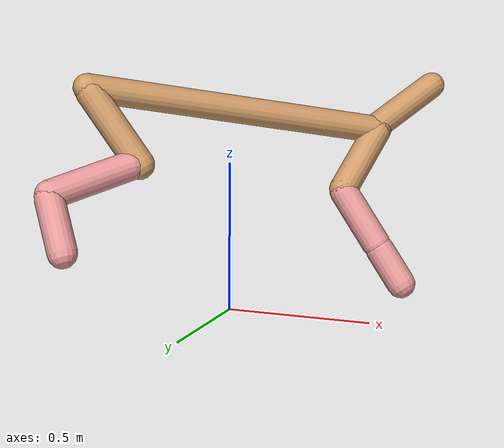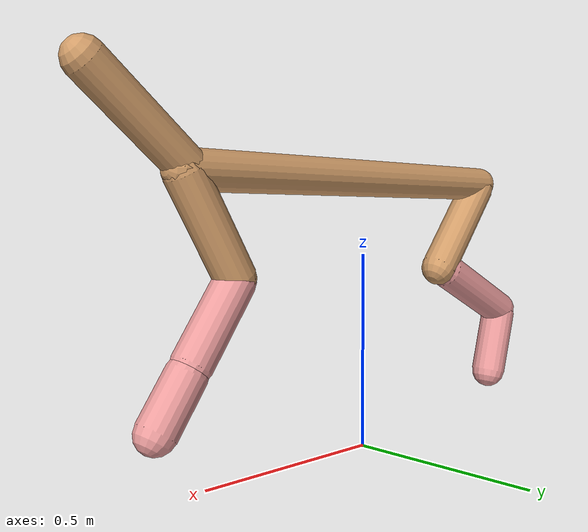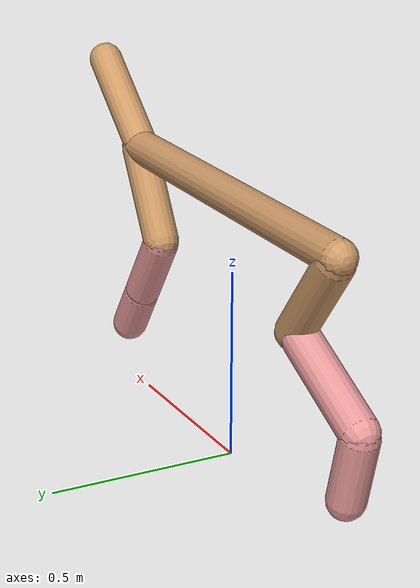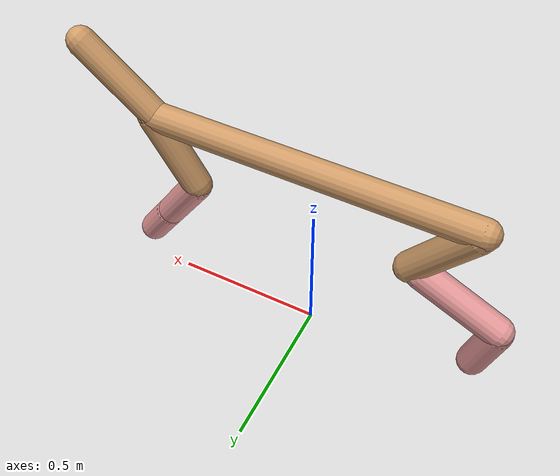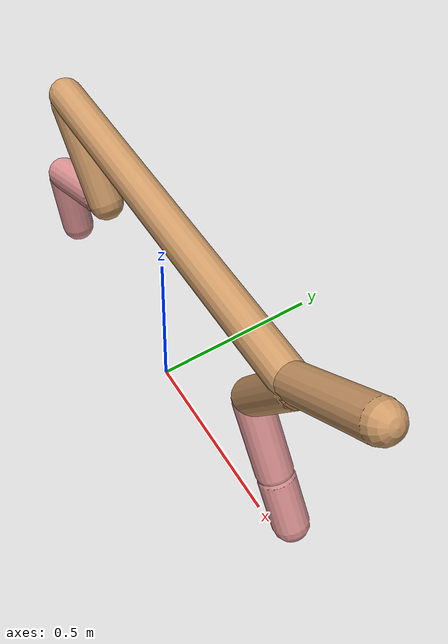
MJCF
<mujoco model="cheetah">
  <compiler angle="radian" coordinate="local" inertiafromgeom="true" settotalmass="14" />
  <default>
    <joint armature=".1" damping=".01" limited="true" solimplimit="0 .8 .03" solreflimit=".02 1" stiffness="8" />
    <geom conaffinity="0" condim="3" contype="1" friction="0.8 .1 .1" rgba="0.8 0.6 .4 1" solimp="0.0 0.8 0.01" solref="0.02 1" />
    <motor ctrllimited="true" ctrlrange="-1 1" />
  </default>
  <size nstack="300000" nuser_geom="1" />
  <option gravity="0 0 -9.81" timestep="0.01" />
  <worldbody>
    <body name="torso" pos="0.0 0.0 0.6939741329244298">
      <joint armature="0" axis="1 0 0" damping="0" limited="false" name="ignorex" pos="0 0 0" stiffness="0" type="slide" />
      <joint armature="0" axis="0 0 1" damping="0" limited="false" name="ignorez" pos="0 0 0" stiffness="0" type="slide" />
      <joint armature="0" axis="0 1 0" damping="0" limited="false" name="ignorey" pos="0 0 0" stiffness="0" type="hinge" />
      <geom fromto="-0.5 0.0 0.0 0.5474395536021905 0.0 0.0" name="torso" size="0.0464198750371697" type="capsule" />
      <geom axisangle="0 1 0 .87" name="head" pos="0.6474395536021905 0.0 0.1" size="0.045304928691134304 0.15" type="capsule" />

      <body name="bthigh" pos="-.5 0 0">
        <joint axis="0 1 0" damping="6" name="bthigh" pos="0 0 0" range="-.52 1.05" stiffness="240" type="hinge" />
        <geom axisangle="0 1 0 -3.8" name="bthigh" pos="0.09877335202240216 0.0 -0.1284053576291228" size="0.04895273923625642 0.14298814773108415" type="capsule" />
        <body name="bshin" pos="0.1575467040448043 0.0 -0.24681071525824558">
          <joint axis="0 1 0" damping="4.5" name="bshin" pos="0 0 0" range="-.785 .785" stiffness="180" type="hinge" />
          <geom axisangle="0 1 0 -2.03" name="bshin" pos="-0.1381384944411105 0.0 -0.06906924722055525" rgba="0.9 0.6 0.6 1" size="0.04895273923625642 0.14791877351491464" type="capsule" />
          <body name="bfoot" pos="-0.276276988882221 0.0 -0.1381384944411105">
            <joint axis="0 1 0" damping="3" name="bfoot" pos="0 0 0" range="-.4 .785" stiffness="120" type="hinge" />
            <geom axisangle="0 1 0 -.27" name="bfoot" pos="0.029614637967924625 0.0 -0.09575399609628962" rgba="0.9 0.6 0.6 1" size="0.04895273923625642 0.09269576473601318" type="capsule" />
            <inertial mass="10" />
          </body>
        </body>
      </body>
      <body name="fthigh" pos="0.5474395536021905 0.0 0.0">
        <joint axis="0 1 0" damping="4.5" name="fthigh" pos="0 0 0" range="-1.5 0.8" stiffness="180" type="hinge" />
        <geom axisangle="0 1 0 .52" name="fthigh" pos="-0.06957759146813365 0.0 -0.1192758710882291" size="0.04814688688903783 0.13216167330434014" type="capsule" />
        <body name="fshin" pos="-0.1391551829362673 0.0 -0.2385517421764582">
          <joint axis="0 1 0" damping="3" name="fshin" pos="0 0 0" range="-1.2 1.1" stiffness="120" type="hinge" />
          <geom axisangle="0 1 0 -.6" name="fshin" pos="0.0646088102984774 0.0 -0.08945835272096869" rgba="0.9 0.6 0.6 1" size="0.04814688688903783 0.10533185992676733" type="capsule" />
          <body name="ffoot" pos="0.1292176205969548 0.0 -0.17891670544193738">
            <joint axis="0 1 0" damping="1.5" name="ffoot" pos="0 0 0" range="-3.1 -0.3" stiffness="60" type="hinge" />
            <geom axisangle="0 1 0 -.6" name="ffoot" pos="0.04476140446069535 0.0 -0.06962885138330388" rgba="0.9 0.6 0.6 1" size="0.04814688688903783 0.06955877542333692" type="capsule" />
            <inertial mass="10" />
          </body>
        </body>
      </body>
    </body>
  </worldbody>
  <actuator>
    <motor gear="120" joint="bthigh" name="bthigh" />
    <motor gear="90" joint="bshin" name="bshin" />
    <motor gear="60" joint="bfoot" name="bfoot" />
    <motor gear="120" joint="fthigh" name="fthigh" />
    <motor gear="60" joint="fshin" name="fshin" />
    <motor gear="30" joint="ffoot" name="ffoot" />
  </actuator>
</mujoco>
